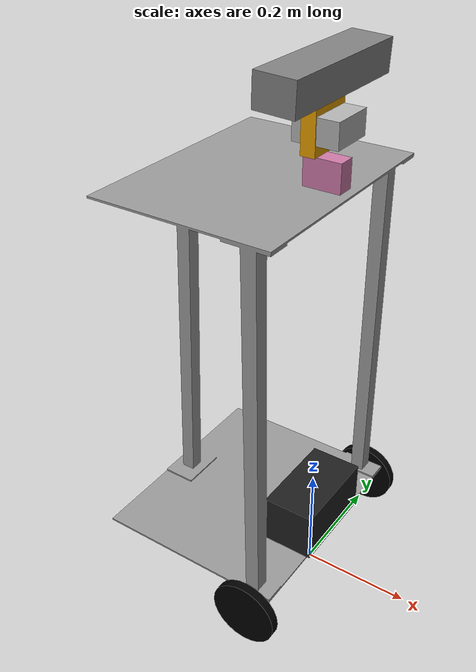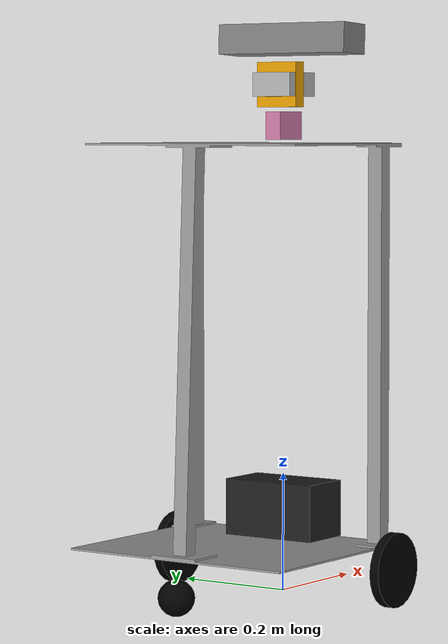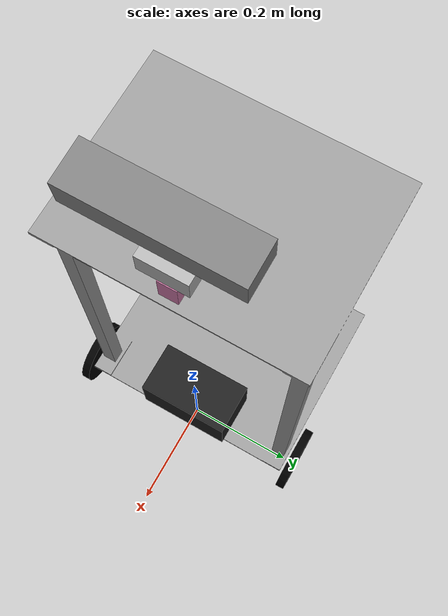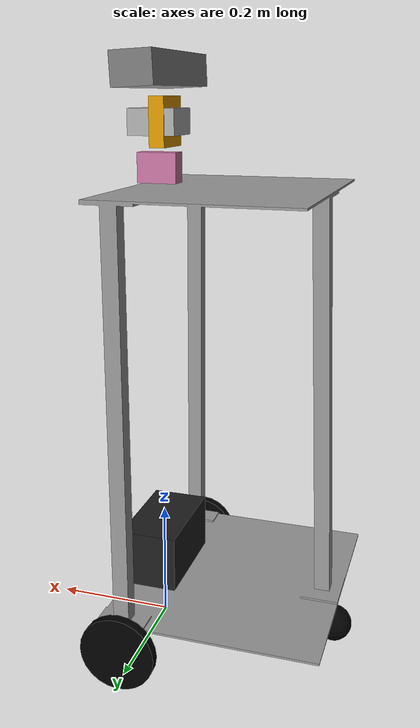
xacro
<?xml version="1.0"?>
<robot xmlns:xacro="http://www.ros.org/wiki/xacro" name="sodabot">

	<xacro:property name="topPlateDepth" value="0.315"/>
	<xacro:property name="bottomPlateDepth" value="0.357"/>
	<xacro:property name="baseWidth" value="0.413"/>
	<xacro:property name="plateThickness" value="0.00338"/>
	<xacro:property name="supportThickness" value="0.0254"/>
	<xacro:property name="supportWallThickness" value="0.0015"/>
	<xacro:property name="bottomPlateElevation" value="0.091"/>
	<xacro:property name="topPlateElevation" value="0.754"/>
	<xacro:property name="wheelsAtDepth" value="0.041"/>
	<xacro:property name="wheelOffsetFromBase" value="0.0132"/>
	<xacro:property name="wheelJointHeightFromBase" value="0.036"/>

	<xacro:property name="scaling" value="100"/>
	<xacro:property name="scaling2" value="10000"/>
	<xacro:property name="scaling5" value="10000000000"/>

	<xacro:property name="chassisMassFudgeFactor" value="5"/>
	<xacro:property name="chassis_mass" value="${3.51*chassisMassFudgeFactor}"/>
	<xacro:property name="chassis_scaled_volume" value="1295.270142"/>
	<xacro:property name="chassis_volume" value="${chassis_scaled_volume / (scaling*scaling*scaling)}"/>
	<xacro:property name="inertial_scale" value="${chassis_mass/(scaling5*chassis_volume)}"/>
	<xacro:property name="inertial_scale2" value="${chassis_mass/chassis_volume}"/>

	<xacro:property name="pi" value="3.14159265359"/>
   	<xacro:property name="M_PI" value="3.14159265359"/>

	<xacro:macro name="sphere_inertial" params="mass radius">
		<inertial>
			<mass value="${mass}" />
			<inertia ixx="${mass*radius*radius*2/5}" ixy="0.0" ixz="0.0"
	                 iyy="${mass*radius*radius*2/5}" iyz="0.0"
                     izz="${mass*radius*radius*2/5}" />
   		</inertial>
   	</xacro:macro>

	<xacro:macro name="cuboid_inertia" params="mass sx sy sz">
			<inertia ixx="${mass*(sy*sy + sz*sz)/12}" ixy="0.0" ixz="0.0"
	                 iyy="${mass*(sx*sx + sz*sz)/12}" iyz="0.0"
                     izz="${mass*(sy*sy + sx*sx)/12}" />
   	</xacro:macro>

	<xacro:macro name="cuboid_inertial" params="mass sx sy sz">
		<inertial>
			<mass value="${mass}" />
			<xacro:cuboid_inertia mass="${mass}" sx="${sx}" sy="${sy}" sz="${sz}"/>
   		</inertial>
   	</xacro:macro>

	<xacro:macro name="cylinder_inertial" params="mass radius height">
		<inertial>
			<mass value="${mass}" />
			<inertia ixx="${mass*height*height/12 + mass*radius*radius/4}" ixy="0.0" ixz="0.0"
	                 iyy="${mass*height*height/12 + mass*radius*radius/4}" iyz="0.0"
                     izz="${mass*radius*radius/2}" />
   		</inertial>
   	</xacro:macro>

	<xacro:macro name="cylinder_link" params="mass radius height material">
		<visual>
	    	<geometry>
	      		<cylinder length="${height}" radius="${radius}"/>
	    	</geometry>
	  		<origin rpy="0 0 0" xyz="0 0 0"/>
		  	<material name="black"/>
		</visual>
		<collision>
			<origin xyz="0 0 0" rpy="0 0 0"/>
			<geometry>
	      		<cylinder length="${height}" radius="${radius}"/>
			</geometry>
		</collision>
		<xacro:cylinder_inertial mass="${mass}" radius="${radius}" height="${height}"/>
   	</xacro:macro>

    <material name="black">
   		<color rgba="0 0 0 1"/>
   	</material>

	<link name="base_link">
		<visual>
			<origin xyz="0 0 0" rpy="0 0 0"/>
			<geometry>
				<mesh filename="package://sodabot/meshes/sodabot.dae"/>
			</geometry>
		</visual>
		<collision>
			<origin xyz="0 0 0" rpy="0 0 0"/>
			<geometry>
				<mesh filename="package://sodabot/meshes/sodabot.dae"/>
			</geometry>
		</collision>
		<inertial>

			<origin
				xyz="${-11.913177/scaling} ${0/scaling} ${41.190914/scaling}"
				rpy="0 0 0"/>
			<mass
				value="${chassis_mass}"/>
			<inertia
				ixx="${1423924.500000*inertial_scale}"	ixy="${0.409780*inertial_scale}"			ixz="${-38116.269531*inertial_scale}"
														iyy="${1363803.125000*inertial_scale}"		iyz="${-0.002875*inertial_scale}"
																									izz="${367921.718750*inertial_scale}"
				/>
		</inertial>
	</link>
	<gazebo reference="base_link">
		<gravity>true</gravity>
    	<material>Gazebo/Grey</material>
		<kp  value="10000000.0" />
  		<kd  value="1.0" />
	</gazebo>

	<link name="base_footprint">
		<xacro:sphere_inertial mass="0.0001" radius="0.0001"/>
	</link>
	<joint name="base_to_footprint_attachment" type="fixed">
	  <child link="base_link"/>
	  <parent link="base_footprint"/>
	  <origin rpy="0 0 0" xyz="0 0 0"/>
	  <dynamics damping="0.0" friction="0.0"/>
	</joint>

	<link name="battery">
		<visual>
			<geometry>
				<box size="0.095 0.170 0.095"/>
			</geometry>
	  		<origin rpy="0 0 0" xyz="0 0 0"/>
	  	</visual>
		<collision>
			<geometry>
				<box size="0.095 0.170 0.095"/>
			</geometry>
	  		<origin rpy="0 0 0" xyz="0 0 0"/>
		</collision>
		<xacro:cuboid_inertial mass="${2.5*chassisMassFudgeFactor}" sx="0.095" sy="0.170" sz="0.095"/>
	</link>
	<joint name="base_to_battery_attachment" type="fixed">
	  <parent link="base_link"/>
	  <child link="battery"/>
	  <origin rpy="0 0 0" xyz="0 0 ${bottomPlateElevation + plateThickness + 0.095/2}"/>
	  <dynamics damping="0.0" friction="0.0"/>
	</joint>
	<gazebo reference="battery">
    	<turnGravityOff>false</turnGravityOff>
    	<material>Gazebo/Black</material>
	</gazebo>

	<link name="lwheel">
		<xacro:cylinder_link mass="0.3" radius="0.062" height="0.016" material="black"/>
	</link>

	<gazebo reference="lwheel">
    	<mu1 value="0.5"/>
    	<mu2 value="0.5"/>
    	<turnGravityOff>false</turnGravityOff>
    	<material>Gazebo/Black</material>
	</gazebo>

	<link name="rwheel">
		<xacro:cylinder_link mass="0.3" radius="0.062" height="0.016" material="black"/>
	</link>

	<gazebo reference="rwheel">
    	<mu1 value="0.5"/>
    	<mu2 value="0.5"/>
    	<turnGravityOff>false</turnGravityOff>
    	<material>Gazebo/Grey</material>
	</gazebo>

	<link name="mwheel">
		<visual>
	    	<geometry>
	      		<sphere radius="0.03"/>
	    	</geometry>
	  		<origin rpy="0 0 0" xyz="0 0 0"/>
		  	<material name="black"/>
		</visual>
		<collision>
			<origin xyz="0 0 0" rpy="0 0 0"/>
			<geometry>
	      		<sphere radius="0.03"/>
			</geometry>
		</collision>
  	    <xacro:sphere_inertial mass="0.001" radius="0.03"/>
	</link>
	<gazebo reference="mwheel">
    	<mu1 value="0.00000000001"/>
    	<mu2 value="0.00000000001"/>
    	<material>Gazebo/Grey</material>
	</gazebo>

	<joint name="base_to_rwheel" type="continuous">
    <axis xyz="0 0 1"/>
	  <parent link="base_link"/>
	  <child link="rwheel"/>
	  <origin rpy="${pi/2} 0 0" xyz="0 ${baseWidth/2  + wheelOffsetFromBase} ${bottomPlateElevation - wheelJointHeightFromBase}"/>
	  <dynamics damping="0.0" friction="0.0"/>
	  <limit effort="100" velocity="100"/>
	  <joint_properties damping="0.0" friction="0.0"/>
	</joint>

	<joint name="base_to_lwheel" type="continuous">
      <axis xyz="0 0 -1"/>
	  <parent link="base_link"/>
	  <child link="lwheel"/>
	  <origin rpy="${-pi/2} 0 0" xyz="0 ${-baseWidth/2 - wheelOffsetFromBase} ${bottomPlateElevation - wheelJointHeightFromBase}"/>
	  <dynamics damping="0.0" friction="0.0"/>
	  <limit effort="100" velocity="100"/>
	  <joint_properties damping="0.0" friction="0.0"/>
	</joint>

    <joint name="base_to_mwheel" type="fixed">
      <axis xyz="0 0 1"/>
	  <parent link="base_link"/>
	  <child link="mwheel"/>
	  <origin rpy="0 0 0" xyz="${-bottomPlateDepth+wheelsAtDepth+0.01} 0 ${bottomPlateElevation - 0.06}"/>
	  <dynamics damping="0.0" friction="0.0"/>
	</joint>

	<!-- Kinect Camera Location (Nominally 0) -->
	<property name="cal_kinect_x" value="0.0" />
	<property name="cal_kinect_y" value="0.0" />
	<property name="cal_kinect_z" value="0.0" />
	<property name="cal_kinect_roll" value="0.0" />
	<property name="cal_kinect_pitch" value="0.0" />
	<property name="cal_kinect_yaw" value="0.0" />

	<xacro:macro name="kinect2_ir_gazebo_v0" params="link_name frame_name camera_name">
	  <gazebo reference="${link_name}">
	    <sensor type="depth" name="${name}_ir_sensor">
	      <always_on>true</always_on>
	      <update_rate>2.0</update_rate>
	      <camera>
	        <horizontal_fov>${57.0*M_PI/180.0}</horizontal_fov>
	        <image>
	          <format>L8</format>
	          <width>640</width>
	          <height>480</height>
	        </image>
	        <clip>
	          <near>0.01</near>
	          <far>5</far>
	        </clip>
	      </camera>
	      <plugin name="${link_name}_controller" filename="libgazebo_ros_openni_kinect.so">
	        <baseline>0.2</baseline>
	        <alwaysOn>true</alwaysOn>
	        <updateRate>2.0</updateRate>
	        <cameraName>${camera_name}_ir</cameraName>
	        <imageTopicName>/${camera_name}/ir/image_raw</imageTopicName>
	        <cameraInfoTopicName>/${camera_name}/ir/camera_info</cameraInfoTopicName>
	        <depthImageTopicName>/${camera_name}/depth/image_raw</depthImageTopicName>
	        <depthImageCameraInfoTopicName>/${camera_name}/depth/camera_info</depthImageCameraInfoTopicName>
	        <pointCloudTopicName>/${camera_name}/depth/points</pointCloudTopicName>
	        <frameName>${frame_name}</frameName>
	        <pointCloudCutoff>0.5</pointCloudCutoff>
	        <distortionK1>0.00000001</distortionK1>
	        <distortionK2>0.00000001</distortionK2>
	        <distortionK3>0.00000001</distortionK3>
	        <distortionT1>0.00000001</distortionT1>
	        <distortionT2>0.00000001</distortionT2>
	        <CxPrime>0</CxPrime>
	        <Cx>0</Cx>
	        <Cy>0</Cy>
	        <focalLength>0</focalLength>
	        <hackBaseline>0</hackBaseline>
	      </plugin>
	    </sensor>
	    <material value="Gazebo/Red" />
	  </gazebo>
	</xacro:macro>

	<xacro:macro name="kinect2_rgb_gazebo_v0" params="link_name frame_name camera_name">
	  <gazebo reference="${link_name}">
	    <sensor type="depth" name="${name}_rgb_sensor">
	      <always_on>true</always_on>
	      <update_rate>1.0</update_rate>
	      <camera>
	        <horizontal_fov>${57.0*M_PI/180.0}</horizontal_fov>
	        <image>
	          <format>B8G8R8</format>
	          <width>640</width>
	          <height>480</height>
	        </image>
	        <clip>
	          <near>0.01</near>
	          <far>100</far>
	        </clip>
	      </camera>
	      <plugin name="${link_name}_controller" filename="libgazebo_ros_openni_kinect.so">
	        <alwaysOn>true</alwaysOn>
	        <updateRate>1.0</updateRate>
	        <cameraName>${camera_name}_rgb</cameraName>
	        <imageTopicName>/${camera_name}/rgb/image_raw</imageTopicName>
	        <cameraInfoTopicName>/${camera_name}/rgb/camera_info</cameraInfoTopicName>
	        <depthImageTopicName>/${camera_name}/depth/image_raw</depthImageTopicName>
	        <depthImageCameraInfoTopicName>/${camera_name}/depth/camera_info</depthImageCameraInfoTopicName>
	        <pointCloudTopicName>/${camera_name}/depth_registered/points</pointCloudTopicName>
	        <frameName>${frame_name}</frameName>
	        <pointCloudCutoff>0.5</pointCloudCutoff>
	        <distortionK1>0.00000001</distortionK1>
	        <distortionK2>0.00000001</distortionK2>
	        <distortionK3>0.00000001</distortionK3>
	        <distortionT1>0.00000001</distortionT1>
	        <distortionT2>0.00000001</distortionT2>
	        <CxPrime>0</CxPrime>
	        <Cx>0</Cx>
	        <Cy>0</Cy>
	        <focalLength>0</focalLength>
	        <hackBaseline>0</hackBaseline>
	      </plugin>
	    </sensor>
	    <material value="Gazebo/Red" />
	  </gazebo>
	</xacro:macro>

	<xacro:property name="ir_depth_rgb_offset_y" value="0.01"/> <!-- FIXME: what is this offset? -->

  <!-- Kinect2 and mount assembly -->
  <xacro:macro name="kinect2_v0" params="name parent *origin">
    <joint name="${name}_kinect2_joint" type="fixed">
      <insert_block name="origin" />
      <parent link="${parent}"/>
      <child link="${name}_kinect2_link"/>
    </joint>
    <link name="${name}_kinect2_link">
	  <xacro:cuboid_inertial mass="0.0001" sx="0.065" sy="0.250" sz="0.050"/>
      <visual>
        <geometry>
	   		<box size="0.065 0.250 0.050"/>
        </geometry>
        <material name="black">
          <color rgba="0.5 0.5 0.5 1"/>
        </material>
      </visual>
      <collision>
        <geometry>
	   		<box size="0.065 0.250 0.050"/>
        </geometry>
      </collision>
    </link>

    <!-- kinect2 ir sensor physical attachment -->
    <joint name="${name}_kinect2_ir_joint" type="fixed">
      <origin xyz="0 -0.0475 0" rpy="0 0 0"/>
      <parent link="${name}_kinect2_link"/>
      <child link="${name}_kinect2_ir_link"/>
    </joint>
    <link name="${name}_kinect2_ir_link">
      <xacro:sphere_inertial mass="0.0001" radius="0.0005"/>
      <visual>
        <origin xyz="0.0 0.0 0" rpy="0 0 0"/>
        <geometry>
          <sphere radius="0.0005"/>
        </geometry>
      </visual>
      <collision>
        <origin xyz="0.0 0.0 0" rpy="0 0 0"/>
        <geometry>
          <sphere radius="0.0005"/>
        </geometry>
      </collision>
    </link>
    <!-- kinect2 ir sensor frame -->
    <joint name="${name}_kinect2_ir_optical_frame_joint" type="fixed">
      <origin xyz="${cal_kinect_x}                  ${cal_kinect_y+ir_depth_rgb_offset_y} ${cal_kinect_z}"
              rpy="${-M_PI/2+cal_kinect_roll}       ${0.0+cal_kinect_pitch}               ${-M_PI/2+cal_kinect_yaw}" />
      <parent link="${name}_kinect2_ir_link"/>
      <child link="${name}_kinect2_ir_optical_frame"/>
    </joint>

    <link name="${name}_kinect2_ir_optical_frame"/>
    <!-- gazebo extensions -->
    <xacro:kinect2_ir_gazebo_v0 link_name="${name}_kinect2_ir_link" frame_name="${name}_kinect2_ir_optical_frame" camera_name="head_mount_kinect2" />

    <!-- kinect2 rgb sensor physical attachment -->
    <joint name="${name}_kinect2_rgb_joint" type="fixed">
      <origin xyz="0 -0.05175 0" rpy="0 0 0"/>
      <parent link="${name}_kinect2_ir_link"/>
      <child link="${name}_kinect2_rgb_link"/>
    </joint>

    <link name="${name}_kinect2_rgb_link" >
      <xacro:sphere_inertial mass="0.0001" radius="0.0005"/>
      <visual>
        <origin xyz="${cal_kinect_x}            ${cal_kinect_y}                 ${cal_kinect_z}"
                rpy="${-M_PI/2+cal_kinect_roll} ${0.0+cal_kinect_pitch}         ${-M_PI/2+cal_kinect_yaw}" />
        <geometry>
          <sphere radius="0.0005"/>
        </geometry>
      </visual>
      <collision>
        <origin xyz="0.0 0.0 0" rpy="0 0 0"/>
        <geometry>
          <sphere radius="0.0005"/>
        </geometry>
      </collision>
    </link>

    <!-- kinect2 rgb sensor frame -->
    <joint name="${name}_kinect2_rgb_optical_frame_joint" type="fixed">
      <origin xyz="${cal_kinect_x}            ${cal_kinect_y}                 ${cal_kinect_z}"
              rpy="${-M_PI/2+cal_kinect_roll} ${0.0+cal_kinect_pitch}         ${-M_PI/2+cal_kinect_yaw}" />
      <parent link="${name}_kinect2_rgb_link"/>
      <child link="${name}_kinect2_rgb_optical_frame"/>
    </joint>

    <link name="${name}_kinect2_rgb_optical_frame"/>
    <!-- gazebo extensions -->
    <xacro:kinect2_rgb_gazebo_v0 link_name="${name}_kinect2_rgb_link" frame_name="${name}_kinect2_rgb_optical_frame" camera_name="head_mount_kinect2" />

  	</xacro:macro>

	<link name="head_pan_base">
		<visual>
			<geometry>
				<box size="0.06352 0.02975 0.0466"/>
			</geometry>
	  		<origin rpy="0 0 0" xyz="0 0 0"/>
	  	</visual>
		<collision>
			<geometry>
				<box size="0.06352 0.02975 0.0466"/>
			</geometry>
	  		<origin rpy="0 0 0" xyz="0 0 0"/>
		</collision>
		<xacro:cuboid_inertial mass="0.94" sx="0.06352" sy="0.02975" sz="0.0566"/>
	</link>
    <joint name="base_to_head_pan_base_joint" type="fixed">
	  <parent link="base_link"/>
	  <child link="head_pan_base"/>
	  <origin rpy="0 0 0" xyz="0 0 ${topPlateElevation + plateThickness + 0.0566/2}"/>
	  <dynamics damping="0.0" friction="0.0"/>
	</joint>

	<link name="head_tilt_base">
		<visual>
			<geometry>
				<box size="0.075 0.075 0.04"/>
			</geometry>
	  		<origin rpy="0 0 0" xyz="0 0 0"/>
	  	</visual>
		<collision>
			<geometry>
				<box size="0.075 0.075 0.04"/>
			</geometry>
			<origin xyz="0 0 0" rpy="0 0 0"/>
		</collision>
		<xacro:cuboid_inertial mass="0.01" sx="0.075" sy="0.075" sz="0.04"/>
	</link>
    <joint name="head_pan_joint" type="revolute">
      <axis xyz="0 0 1"/>
	  <parent link="head_pan_base"/>
	  <child link="head_tilt_base"/>
	  <origin rpy="0 0 0" xyz="0 0 ${0.0687}"/>
	  <limit lower="${-pi/2}" upper="${pi/2}" effort="1" velocity="${pi/4}"/>
	  <dynamics damping="1.0" friction="1.0"/>
	</joint>

	<link name="head_kinect_mount_link">
		<origin xyz="0 0 ${-0.075/2}" rpy="0 0 0"/>
		<visual>
			<geometry>
				<box size="0.024 0.078 0.075"/>
			</geometry>
	  	</visual>
		<collision>
			<geometry>
				<box size="0.024 0.078 0.075"/>
			</geometry>
		</collision>
		<xacro:cuboid_inertial mass="0.01" sx="0.024" sy="0.078" sz="0.075"/>
	</link>
  <joint name="head_tilt_joint" type="revolute">
    <axis xyz="0 1 0"/>
	  <parent link="head_tilt_base"/>
	  <child link="head_kinect_mount_link"/>
	  <origin rpy="0 0 0" xyz="-0.01 0 0"/>
	  <limit lower="${-pi*0.4}" upper="${pi*0.4}" effort="1" velocity="${pi/4}"/>
	  <dynamics damping="1.0" friction="1.0"/>
	</joint>

    <xacro:kinect2_v0 name="head_mount" parent="head_kinect_mount_link" >
      <origin xyz="0.01 -0.015 ${0.075}" rpy="0 0.046179929 0" />
    </xacro:kinect2_v0>

	<transmission name="lwheel_trans">
    	<type>transmission_interface/SimpleTransmission</type>
    	<joint name="base_to_lwheel">
      		<hardwareInterface>EffortJointInterface</hardwareInterface>
    	</joint>
    	<actuator name="lwheel_motor">
      		<hardwareInterface>EffortJointInterface</hardwareInterface>
      		<mechanicalReduction>1</mechanicalReduction>
    	</actuator>
	</transmission>

	<transmission name="rwheel_trans">
    	<type>transmission_interface/SimpleTransmission</type>
    	<joint name="base_to_rwheel">
      		<hardwareInterface>EffortJointInterface</hardwareInterface>
    	</joint>
    	<actuator name="rwheel_motor">
      		<hardwareInterface>EffortJointInterface</hardwareInterface>
      		<mechanicalReduction>1</mechanicalReduction>
    	</actuator>
	</transmission>

	<transmission name="head_pan_trans">
    	<type>transmission_interface/SimpleTransmission</type>
    	<joint name="head_pan_joint">
      		<hardwareInterface>PositionJointInterface</hardwareInterface>
    	</joint>
    	<actuator name="head_pan_servo">
      		<hardwareInterface>PositionJointInterface</hardwareInterface>
      		<mechanicalReduction>1</mechanicalReduction>
    	</actuator>
	</transmission>

	<transmission name="head_tilt_trans">
    	<type>transmission_interface/SimpleTransmission</type>
    	<joint name="head_tilt_joint">
      		<hardwareInterface>PositionJointInterface</hardwareInterface>
    	</joint>
    	<actuator name="head_tilt_servo">
      		<hardwareInterface>PositionJointInterface</hardwareInterface>
      		<mechanicalReduction>1</mechanicalReduction>
    	</actuator>
	</transmission>

	<gazebo>

		<plugin name="gazebo_ros_control" filename="libgazebo_ros_control.so">

		</plugin>

		<plugin name="differential_drive_controller" filename="libgazebo_ros_diff_drive.so">
	    	<rosDebugLevel>Debug</rosDebugLevel>
	    	<legacyMode>false</legacyMode>
    		<publishWheelTF>True</publishWheelTF>
    		<publishTf>1</publishTf>
			<publishWheelJointState>true</publishWheelJointState>
			<broadcastTF>1</broadcastTF>
    		<alwaysOn>true</alwaysOn>
			<leftJoint>base_to_lwheel</leftJoint>
			<rightJoint>base_to_rwheel</rightJoint>
			<robotBaseFrame>base_footprint</robotBaseFrame>
			<wheelSeparation>0.469</wheelSeparation>
			<wheelDiameter>0.125</wheelDiameter>
			<wheelTorque>1.56</wheelTorque>
			<torque>1.56</torque>
			<wheelAcceleration>1.8</wheelAcceleration>
			<commandTopic>cmd_vel</commandTopic>
    	<odometryFrame>odom</odometryFrame>
			<odometryTopic>odom</odometryTopic>
		</plugin>
		80 - 0.050/2
	</gazebo>

</robot>
